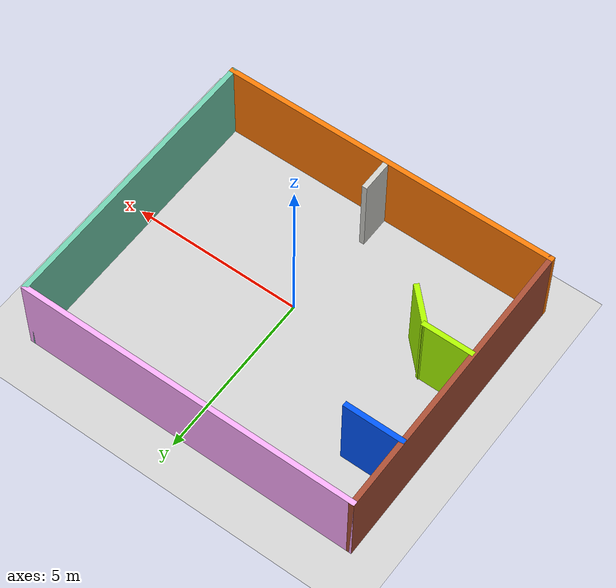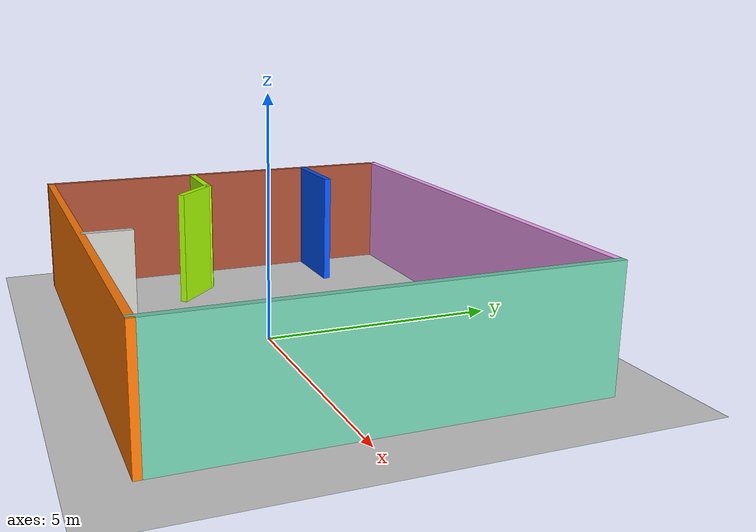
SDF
<sdf version="1.6">
 <world name="default">
  <light name="sun" type="directional">
   <pose>0 0 10 0 -0 0</pose>
   <diffuse>0.8 0.8 0.8 1</diffuse>
   <specular>0.2 0.2 0.2 1</specular>
   <attenuation>
    <range>1000</range>
    <constant>0.9</constant>
    <linear>0.01</linear>
    <quadratic>0.001</quadratic>
   </attenuation>
   <direction>-0.5 0.1 -0.9</direction>
  </light>
  <model name="ground_plane">
   <static>1</static>
   <link name="link">
    <collision name="collision">
     <geometry><plane><normal>0 0 1</normal><size>100 100</size></plane></geometry>
     <surface><friction><ode><mu>100</mu><mu2>50</mu2></ode></friction></surface>
    </collision>
    <visual name="visual">
     <cast_shadows>0</cast_shadows>
     <geometry><plane><normal>0 0 1</normal><size>100 100</size></plane></geometry>
     <material>
      <script><uri>file://media/materials/scripts/gazebo.material</uri><name>Gazebo/Grey</name></script>
     </material>
    </visual>
   </link>
  </model>
  <gravity>0 0 -9.8</gravity>
  <magnetic_field>6e-06 2.3e-05 -4.2e-05</magnetic_field>
  <atmosphere type="adiabatic"/>
  <physics name="default_physics" default="0" type="ode">
   <max_step_size>0.001</max_step_size>
   <real_time_factor>1</real_time_factor>
   <real_time_update_rate>1000</real_time_update_rate>
  </physics>
  <scene><ambient>0.4 0.4 0.4 1</ambient><background>0.7 0.7 0.7 1</background><shadows>1</shadows></scene>
  <spherical_coordinates>
   <surface_model>EARTH_WGS84</surface_model>
   <latitude_deg>0</latitude_deg>
   <longitude_deg>0</longitude_deg>
   <elevation>0</elevation>
   <heading_deg>0</heading_deg>
  </spherical_coordinates>
  <model name="myBuilding">
   <pose>-0.23502 0.52485 0 0 -0 0</pose>
   <link name="Wall_0">
    <collision name="Wall_0_Collision">
     <geometry><box><size>10 0.15 2.5</size></box></geometry>
     <pose>0 0 1.25 0 -0 0</pose>
    </collision>
    <visual name="Wall_0_Visual">
     <pose>0 0 1.25 0 -0 0</pose>
     <geometry><box><size>10 0.15 2.5</size></box></geometry>
     <material>
      <script><uri>file://media/materials/scripts/gazebo.material</uri><name>Gazebo/Grey</name></script>
      <ambient>1 0.666667 1 1</ambient>
     </material>
     <meta><layer>0</layer></meta>
    </visual>
    <pose>0 4.175 0 0 -0 0</pose>
   </link>
   <link name="Wall_11">
    <collision name="Wall_11_Collision">
     <geometry><box><size>1.25 0.15 2.5</size></box></geometry>
     <pose>0 0 1.25 0 -0 0</pose>
    </collision>
    <visual name="Wall_11_Visual">
     <pose>0 0 1.25 0 -0 0</pose>
     <geometry><box><size>1.25 0.15 2.5</size></box></geometry>
     <material>
      <script><uri>file://media/materials/scripts/gazebo.material</uri><name>Gazebo/Grey</name></script>
      <ambient>0.666667 1 0 1</ambient>
     </material>
     <meta><layer>0</layer></meta>
    </visual>
    <pose>-3.12556 -1.14792 0 0 0 -0.785398</pose>
   </link>
   <link name="Wall_15">
    <collision name="Wall_15_Collision">
     <geometry><box><size>1 0.15 2.5</size></box></geometry>
     <pose>0 0 1.25 0 -0 0</pose>
    </collision>
    <visual name="Wall_15_Visual">
     <pose>0 0 1.25 0 -0 0</pose>
     <geometry><box><size>1 0.15 2.5</size></box></geometry>
     <material>
      <script><uri>file://media/materials/scripts/gazebo.material</uri><name>Gazebo/CeilingTiled</name></script>
      <ambient>1 1 1 1</ambient>
     </material>
     <meta><layer>0</layer></meta>
    </visual>
    <pose>0.002146 -3.66996 0 0 -0 1.5708</pose>
   </link>
   <link name="Wall_3">
    <collision name="Wall_3_Collision">
     <geometry><box><size>8.5 0.15 2.5</size></box></geometry>
     <pose>0 0 1.25 0 -0 0</pose>
    </collision>
    <visual name="Wall_3_Visual">
     <pose>0 0 1.25 0 -0 0</pose>
     <geometry><box><size>8.5 0.15 2.5</size></box></geometry>
     <material>
      <script><uri>file://media/materials/scripts/gazebo.material</uri><name>Gazebo/Grey</name></script>
      <ambient>0.435294 0.796078 0.67451 1</ambient>
     </material>
     <meta><layer>0</layer></meta>
    </visual>
    <pose>4.925 0 0 0 0 -1.5708</pose>
   </link>
   <link name="Wall_4">
    <collision name="Wall_4_Collision">
     <geometry><box><size>10 0.15 2.5</size></box></geometry>
     <pose>0 0 1.25 0 -0 0</pose>
    </collision>
    <visual name="Wall_4_Visual">
     <pose>0 0 1.25 0 -0 0</pose>
     <geometry><box><size>10 0.15 2.5</size></box></geometry>
     <material>
      <script><uri>file://media/materials/scripts/gazebo.material</uri><name>Gazebo/Grey</name></script>
      <ambient>0.996078 0.47451 0.0196078 1</ambient>
     </material>
     <meta><layer>0</layer></meta>
    </visual>
    <pose>0 -4.175 0 0 -0 3.14159</pose>
   </link>
   <link name="Wall_5">
    <collision name="Wall_5_Collision">
     <geometry><box><size>8.5 0.15 2.5</size></box></geometry>
     <pose>0 0 1.25 0 -0 0</pose>
    </collision>
    <visual name="Wall_5_Visual">
     <pose>0 0 1.25 0 -0 0</pose>
     <geometry><box><size>8.5 0.15 2.5</size></box></geometry>
     <material>
      <script><uri>file://media/materials/scripts/gazebo.material</uri><name>Gazebo/Bricks</name></script>
      <ambient>1 1 1 1</ambient>
     </material>
     <meta><layer>0</layer></meta>
    </visual>
    <pose>-4.925 0 0 0 -0 1.5708</pose>
   </link>
   <link name="Wall_7">
    <collision name="Wall_7_Collision">
     <geometry><box><size>1.75 0.15 2.5</size></box></geometry>
     <pose>0 0 1.25 0 -0 0</pose>
    </collision>
    <visual name="Wall_7_Visual">
     <pose>0 0 1.25 0 -0 0</pose>
     <geometry><box><size>1.75 0.15 2.5</size></box></geometry>
     <material>
      <script><uri>file://media/materials/scripts/gazebo.material</uri><name>Gazebo/Grey</name></script>
      <ambient>0 0.333333 1 1</ambient>
     </material>
     <meta><layer>0</layer></meta>
    </visual>
    <pose>-4.11074 2.17858 0 0 -0 0</pose>
   </link>
   <link name="Wall_9">
    <collision name="Wall_9_Collision">
     <geometry><box><size>1.5 0.15 2.5</size></box></geometry>
     <pose>0 0 1.25 0 -0 0</pose>
    </collision>
    <visual name="Wall_9_Visual">
     <pose>0 0 1.25 0 -0 0</pose>
     <geometry><box><size>1.5 0.15 2.5</size></box></geometry>
     <material>
      <script><uri>file://media/materials/scripts/gazebo.material</uri><name>Gazebo/Grey</name></script>
      <ambient>0.666667 1 0 1</ambient>
     </material>
     <meta><layer>0</layer></meta>
    </visual>
    <pose>-4.18947 -0.759011 0 0 -0 0</pose>
   </link>
   <static>1</static>
  </model>
 </world>
</sdf>
